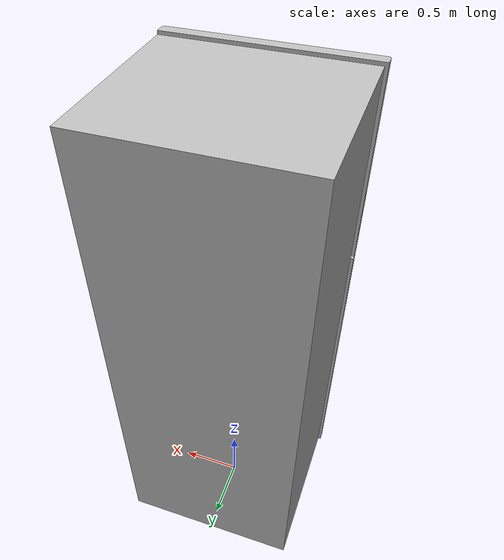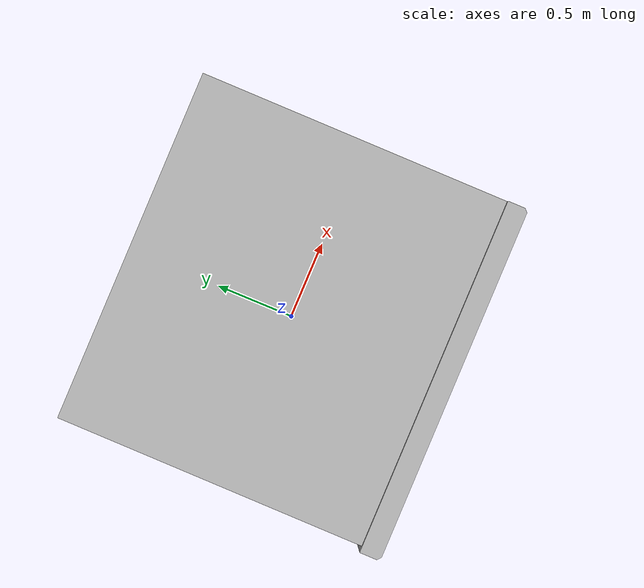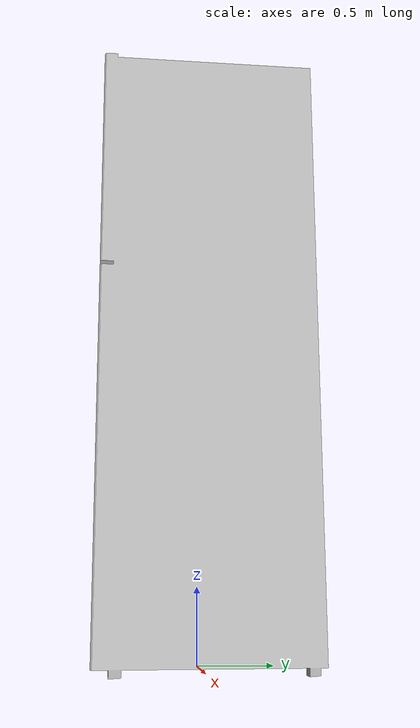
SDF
<?xml version='1.0' encoding='utf-8'?>
<sdf version="1.6">
  <model name="Fridge">
   <static>true</static>
    <link name="body">
      <pose>0 0 0 0 0 0</pose>

      <visual name="visual">
        <geometry>
          <mesh>
            <uri>file:///root/ROS_vehicle/models/Fridge/meshes/Fridge.obj</uri>
            <scale>2.5 2.5 2.5</scale>
          </mesh>
        </geometry>
      </visual>

      <collision name="collision">
        <geometry>
          <mesh>
            <uri>file:///root/ROS_vehicle/models/Fridge/meshes/Fridge.obj</uri>
            <scale>2.5 2.5 2.5</scale>
          </mesh>
        </geometry>
      </collision>

    </link>
  </model>
</sdf>
